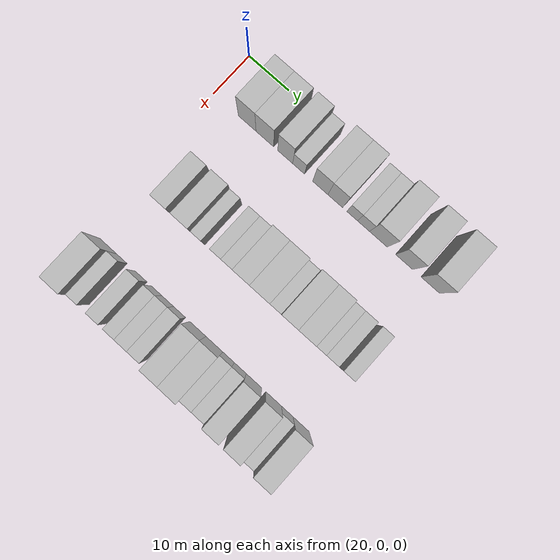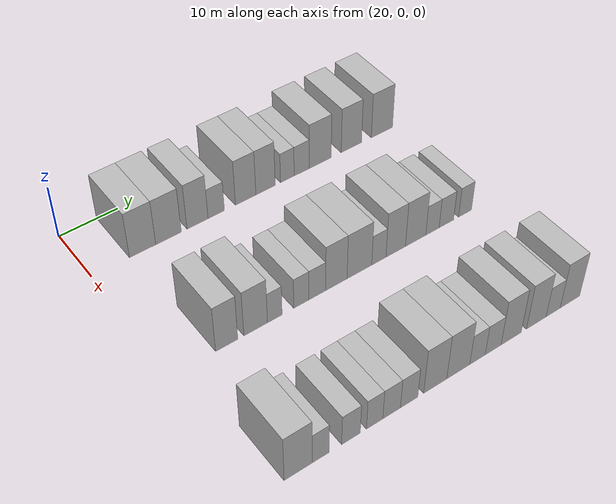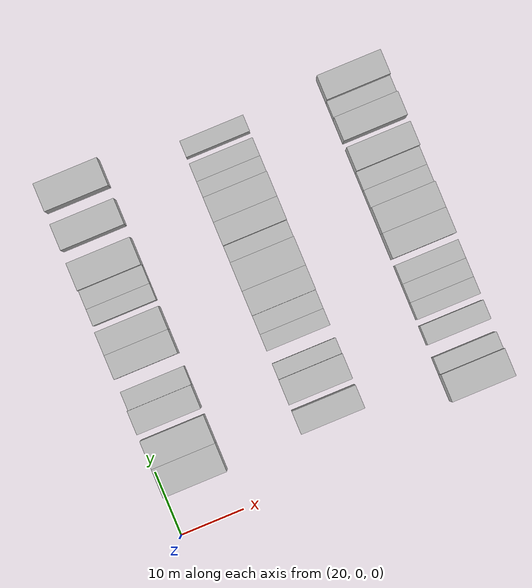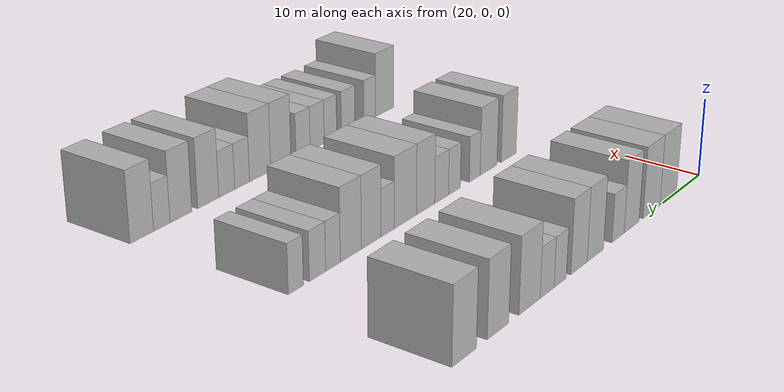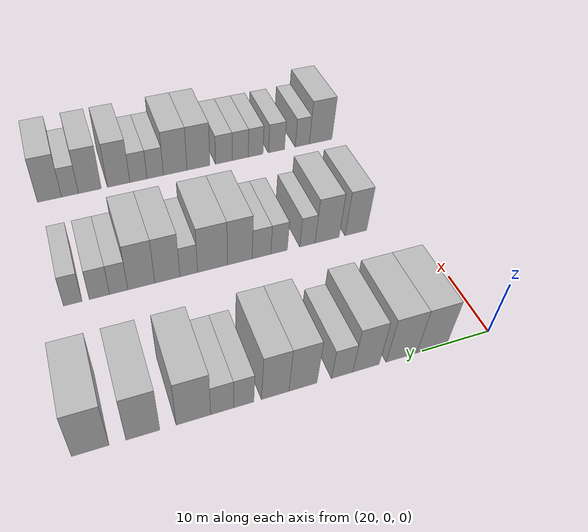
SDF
<sdf version="1.6">
 <world name="default">
  <model name="building_98">
   <static>1</static>
   <pose>25.0000 8.5556 0 0.000000 0.000000 0.000000</pose>
   <link name="link">
    <pose>0 0 4.50 0 0 0</pose>
    <collision name="collision"><geometry><box><size>10.0000 4.4544 9.0000</size></box></geometry></collision>
    <visual name="visual">
     <cast_shadows>0</cast_shadows>
     <geometry><box><size>10.0000 4.4544 9.0000</size></box></geometry>
     <material>
      <script>
       <uri>model://HANNAS_wall/materials/scripts</uri>
       <uri>model://HANNAS_wall/materials/textures</uri>
       <name>vrc/HANNAS_wall</name>
      </script>
     </material>
    </visual>
   </link>
  </model>
  <model name="building_99">
   <static>1</static>
   <pose>25.0000 12.9947 0 0.000000 0.000000 0.000000</pose>
   <link name="link">
    <pose>0 0 4.50 0 0 0</pose>
    <collision name="collision"><geometry><box><size>10.0000 4.4238 9.0000</size></box></geometry></collision>
    <visual name="visual">
     <cast_shadows>0</cast_shadows>
     <geometry><box><size>10.0000 4.4238 9.0000</size></box></geometry>
     <material>
      <script>
       <uri>model://HANNAS_wall/materials/scripts</uri>
       <uri>model://HANNAS_wall/materials/textures</uri>
       <name>vrc/HANNAS_wall</name>
      </script>
     </material>
    </visual>
   </link>
  </model>
  <model name="building_100">
   <static>1</static>
   <pose>25.0000 18.0680 0 0.000000 0.000000 0.000000</pose>
   <link name="link">
    <pose>0 0 4.50 0 0 0</pose>
    <collision name="collision"><geometry><box><size>10.0000 3.7229 9.0000</size></box></geometry></collision>
    <visual name="visual">
     <cast_shadows>0</cast_shadows>
     <geometry><box><size>10.0000 3.7229 9.0000</size></box></geometry>
     <material>
      <script>
       <uri>model://HANNAS_wall/materials/scripts</uri>
       <uri>model://HANNAS_wall/materials/textures</uri>
       <name>vrc/HANNAS_wall</name>
      </script>
     </material>
    </visual>
   </link>
  </model>
  <model name="building_101">
   <static>1</static>
   <pose>25.0000 21.3993 0 0.000000 0.000000 0.000000</pose>
   <link name="link">
    <pose>0 0 3.00 0 0 0</pose>
    <collision name="collision"><geometry><box><size>10.0000 2.9396 6.0000</size></box></geometry></collision>
    <visual name="visual">
     <cast_shadows>0</cast_shadows>
     <geometry><box><size>10.0000 2.9396 6.0000</size></box></geometry>
     <material>
      <script>
       <uri>model://HANNAS_wall/materials/scripts</uri>
       <uri>model://HANNAS_wall/materials/textures</uri>
       <name>vrc/HANNAS_wall</name>
      </script>
     </material>
    </visual>
   </link>
  </model>
  <model name="building_102">
   <static>1</static>
   <pose>25.0000 26.7552 0 0.000000 0.000000 0.000000</pose>
   <link name="link">
    <pose>0 0 4.50 0 0 0</pose>
    <collision name="collision"><geometry><box><size>10.0000 3.7722 9.0000</size></box></geometry></collision>
    <visual name="visual">
     <cast_shadows>0</cast_shadows>
     <geometry><box><size>10.0000 3.7722 9.0000</size></box></geometry>
     <material>
      <script>
       <uri>model://HANNAS_wall/materials/scripts</uri>
       <uri>model://HANNAS_wall/materials/textures</uri>
       <name>vrc/HANNAS_wall</name>
      </script>
     </material>
    </visual>
   </link>
  </model>
  <model name="building_103">
   <static>1</static>
   <pose>25.0000 30.4560 0 0.000000 0.000000 0.000000</pose>
   <link name="link">
    <pose>0 0 4.50 0 0 0</pose>
    <collision name="collision"><geometry><box><size>10.0000 3.6293 9.0000</size></box></geometry></collision>
    <visual name="visual">
     <cast_shadows>0</cast_shadows>
     <geometry><box><size>10.0000 3.6293 9.0000</size></box></geometry>
     <material>
      <script>
       <uri>model://HANNAS_wall/materials/scripts</uri>
       <uri>model://HANNAS_wall/materials/textures</uri>
       <name>vrc/HANNAS_wall</name>
      </script>
     </material>
    </visual>
   </link>
  </model>
  <model name="building_104">
   <static>1</static>
   <pose>25.0000 34.5769 0 0.000000 0.000000 0.000000</pose>
   <link name="link">
    <pose>0 0 3.00 0 0 0</pose>
    <collision name="collision"><geometry><box><size>10.0000 2.6125 6.0000</size></box></geometry></collision>
    <visual name="visual">
     <cast_shadows>0</cast_shadows>
     <geometry><box><size>10.0000 2.6125 6.0000</size></box></geometry>
     <material>
      <script>
       <uri>model://HANNAS_wall/materials/scripts</uri>
       <uri>model://HANNAS_wall/materials/textures</uri>
       <name>vrc/HANNAS_wall</name>
      </script>
     </material>
    </visual>
   </link>
  </model>
  <model name="building_105">
   <static>1</static>
   <pose>25.0000 37.3417 0 0.000000 0.000000 0.000000</pose>
   <link name="link">
    <pose>0 0 3.00 0 0 0</pose>
    <collision name="collision"><geometry><box><size>10.0000 2.9172 6.0000</size></box></geometry></collision>
    <visual name="visual">
     <cast_shadows>0</cast_shadows>
     <geometry><box><size>10.0000 2.9172 6.0000</size></box></geometry>
     <material>
      <script>
       <uri>model://HANNAS_wall/materials/scripts</uri>
       <uri>model://HANNAS_wall/materials/textures</uri>
       <name>vrc/HANNAS_wall</name>
      </script>
     </material>
    </visual>
   </link>
  </model>
  <model name="building_106">
   <static>1</static>
   <pose>25.0000 40.9530 0 0.000000 0.000000 0.000000</pose>
   <link name="link">
    <pose>0 0 4.50 0 0 0</pose>
    <collision name="collision"><geometry><box><size>10.0000 4.3053 9.0000</size></box></geometry></collision>
    <visual name="visual">
     <cast_shadows>0</cast_shadows>
     <geometry><box><size>10.0000 4.3053 9.0000</size></box></geometry>
     <material>
      <script>
       <uri>model://HANNAS_wall/materials/scripts</uri>
       <uri>model://HANNAS_wall/materials/textures</uri>
       <name>vrc/HANNAS_wall</name>
      </script>
     </material>
    </visual>
   </link>
  </model>
  <model name="building_107">
   <static>1</static>
   <pose>25.0000 47.1540 0 0.000000 0.000000 0.000000</pose>
   <link name="link">
    <pose>0 0 4.50 0 0 0</pose>
    <collision name="collision"><geometry><box><size>10.0000 4.0968 9.0000</size></box></geometry></collision>
    <visual name="visual">
     <cast_shadows>0</cast_shadows>
     <geometry><box><size>10.0000 4.0968 9.0000</size></box></geometry>
     <material>
      <script>
       <uri>model://HANNAS_wall/materials/scripts</uri>
       <uri>model://HANNAS_wall/materials/textures</uri>
       <name>vrc/HANNAS_wall</name>
      </script>
     </material>
    </visual>
   </link>
  </model>
  <model name="building_108">
   <static>1</static>
   <pose>25.0000 53.3957 0 0.000000 0.000000 0.000000</pose>
   <link name="link">
    <pose>0 0 4.50 0 0 0</pose>
    <collision name="collision"><geometry><box><size>10.0000 4.3865 9.0000</size></box></geometry></collision>
    <visual name="visual">
     <cast_shadows>0</cast_shadows>
     <geometry><box><size>10.0000 4.3865 9.0000</size></box></geometry>
     <material>
      <script>
       <uri>model://HANNAS_wall/materials/scripts</uri>
       <uri>model://HANNAS_wall/materials/textures</uri>
       <name>vrc/HANNAS_wall</name>
      </script>
     </material>
    </visual>
   </link>
  </model>
  <model name="building_294">
   <static>1</static>
   <pose>47.0000 8.9621 0 0.000000 0.000000 0.000000</pose>
   <link name="link">
    <pose>0 0 4.50 0 0 0</pose>
    <collision name="collision"><geometry><box><size>10.0000 3.6218 9.0000</size></box></geometry></collision>
    <visual name="visual">
     <cast_shadows>0</cast_shadows>
     <geometry><box><size>10.0000 3.6218 9.0000</size></box></geometry>
     <material>
      <script>
       <uri>model://HANNAS_wall/materials/scripts</uri>
       <uri>model://HANNAS_wall/materials/textures</uri>
       <name>vrc/HANNAS_wall</name>
      </script>
     </material>
    </visual>
   </link>
  </model>
  <model name="building_295">
   <static>1</static>
   <pose>47.0000 13.7423 0 0.000000 0.000000 0.000000</pose>
   <link name="link">
    <pose>0 0 4.50 0 0 0</pose>
    <collision name="collision"><geometry><box><size>10.0000 3.9386 9.0000</size></box></geometry></collision>
    <visual name="visual">
     <cast_shadows>0</cast_shadows>
     <geometry><box><size>10.0000 3.9386 9.0000</size></box></geometry>
     <material>
      <script>
       <uri>model://HANNAS_wall/materials/scripts</uri>
       <uri>model://HANNAS_wall/materials/textures</uri>
       <name>vrc/HANNAS_wall</name>
      </script>
     </material>
    </visual>
   </link>
  </model>
  <model name="building_296">
   <static>1</static>
   <pose>47.0000 16.9506 0 0.000000 0.000000 0.000000</pose>
   <link name="link">
    <pose>0 0 3.00 0 0 0</pose>
    <collision name="collision"><geometry><box><size>10.0000 2.4780 6.0000</size></box></geometry></collision>
    <visual name="visual">
     <cast_shadows>0</cast_shadows>
     <geometry><box><size>10.0000 2.4780 6.0000</size></box></geometry>
     <material>
      <script>
       <uri>model://HANNAS_wall/materials/scripts</uri>
       <uri>model://HANNAS_wall/materials/textures</uri>
       <name>vrc/HANNAS_wall</name>
      </script>
     </material>
    </visual>
   </link>
  </model>
  <model name="building_297">
   <static>1</static>
   <pose>47.0000 21.4986 0 0.000000 0.000000 0.000000</pose>
   <link name="link">
    <pose>0 0 3.00 0 0 0</pose>
    <collision name="collision"><geometry><box><size>10.0000 2.6181 6.0000</size></box></geometry></collision>
    <visual name="visual">
     <cast_shadows>0</cast_shadows>
     <geometry><box><size>10.0000 2.6181 6.0000</size></box></geometry>
     <material>
      <script>
       <uri>model://HANNAS_wall/materials/scripts</uri>
       <uri>model://HANNAS_wall/materials/textures</uri>
       <name>vrc/HANNAS_wall</name>
      </script>
     </material>
    </visual>
   </link>
  </model>
  <model name="building_298">
   <static>1</static>
   <pose>47.0000 24.2718 0 0.000000 0.000000 0.000000</pose>
   <link name="link">
    <pose>0 0 3.00 0 0 0</pose>
    <collision name="collision"><geometry><box><size>10.0000 2.9282 6.0000</size></box></geometry></collision>
    <visual name="visual">
     <cast_shadows>0</cast_shadows>
     <geometry><box><size>10.0000 2.9282 6.0000</size></box></geometry>
     <material>
      <script>
       <uri>model://HANNAS_wall/materials/scripts</uri>
       <uri>model://HANNAS_wall/materials/textures</uri>
       <name>vrc/HANNAS_wall</name>
      </script>
     </material>
    </visual>
   </link>
  </model>
  <model name="building_299">
   <static>1</static>
   <pose>47.0000 27.6601 0 0.000000 0.000000 0.000000</pose>
   <link name="link">
    <pose>0 0 4.50 0 0 0</pose>
    <collision name="collision"><geometry><box><size>10.0000 3.8485 9.0000</size></box></geometry></collision>
    <visual name="visual">
     <cast_shadows>0</cast_shadows>
     <geometry><box><size>10.0000 3.8485 9.0000</size></box></geometry>
     <material>
      <script>
       <uri>model://HANNAS_wall/materials/scripts</uri>
       <uri>model://HANNAS_wall/materials/textures</uri>
       <name>vrc/HANNAS_wall</name>
      </script>
     </material>
    </visual>
   </link>
  </model>
  <model name="building_300">
   <static>1</static>
   <pose>47.0000 31.8330 0 0.000000 0.000000 0.000000</pose>
   <link name="link">
    <pose>0 0 4.50 0 0 0</pose>
    <collision name="collision"><geometry><box><size>10.0000 4.4974 9.0000</size></box></geometry></collision>
    <visual name="visual">
     <cast_shadows>0</cast_shadows>
     <geometry><box><size>10.0000 4.4974 9.0000</size></box></geometry>
     <material>
      <script>
       <uri>model://HANNAS_wall/materials/scripts</uri>
       <uri>model://HANNAS_wall/materials/textures</uri>
       <name>vrc/HANNAS_wall</name>
      </script>
     </material>
    </visual>
   </link>
  </model>
  <model name="building_301">
   <static>1</static>
   <pose>47.0000 35.4019 0 0.000000 0.000000 0.000000</pose>
   <link name="link">
    <pose>0 0 3.00 0 0 0</pose>
    <collision name="collision"><geometry><box><size>10.0000 2.6404 6.0000</size></box></geometry></collision>
    <visual name="visual">
     <cast_shadows>0</cast_shadows>
     <geometry><box><size>10.0000 2.6404 6.0000</size></box></geometry>
     <material>
      <script>
       <uri>model://HANNAS_wall/materials/scripts</uri>
       <uri>model://HANNAS_wall/materials/textures</uri>
       <name>vrc/HANNAS_wall</name>
      </script>
     </material>
    </visual>
   </link>
  </model>
  <model name="building_302">
   <static>1</static>
   <pose>47.0000 38.5589 0 0.000000 0.000000 0.000000</pose>
   <link name="link">
    <pose>0 0 4.50 0 0 0</pose>
    <collision name="collision"><geometry><box><size>10.0000 3.6736 9.0000</size></box></geometry></collision>
    <visual name="visual">
     <cast_shadows>0</cast_shadows>
     <geometry><box><size>10.0000 3.6736 9.0000</size></box></geometry>
     <material>
      <script>
       <uri>model://HANNAS_wall/materials/scripts</uri>
       <uri>model://HANNAS_wall/materials/textures</uri>
       <name>vrc/HANNAS_wall</name>
      </script>
     </material>
    </visual>
   </link>
  </model>
  <model name="building_303">
   <static>1</static>
   <pose>47.0000 42.3460 0 0.000000 0.000000 0.000000</pose>
   <link name="link">
    <pose>0 0 4.50 0 0 0</pose>
    <collision name="collision"><geometry><box><size>10.0000 3.9005 9.0000</size></box></geometry></collision>
    <visual name="visual">
     <cast_shadows>0</cast_shadows>
     <geometry><box><size>10.0000 3.9005 9.0000</size></box></geometry>
     <material>
      <script>
       <uri>model://HANNAS_wall/materials/scripts</uri>
       <uri>model://HANNAS_wall/materials/textures</uri>
       <name>vrc/HANNAS_wall</name>
      </script>
     </material>
    </visual>
   </link>
  </model>
  <model name="building_304">
   <static>1</static>
   <pose>47.0000 45.6006 0 0.000000 0.000000 0.000000</pose>
   <link name="link">
    <pose>0 0 3.00 0 0 0</pose>
    <collision name="collision"><geometry><box><size>10.0000 2.6086 6.0000</size></box></geometry></collision>
    <visual name="visual">
     <cast_shadows>0</cast_shadows>
     <geometry><box><size>10.0000 2.6086 6.0000</size></box></geometry>
     <material>
      <script>
       <uri>model://HANNAS_wall/materials/scripts</uri>
       <uri>model://HANNAS_wall/materials/textures</uri>
       <name>vrc/HANNAS_wall</name>
      </script>
     </material>
    </visual>
   </link>
  </model>
  <model name="building_305">
   <static>1</static>
   <pose>47.0000 48.3323 0 0.000000 0.000000 0.000000</pose>
   <link name="link">
    <pose>0 0 3.00 0 0 0</pose>
    <collision name="collision"><geometry><box><size>10.0000 2.8547 6.0000</size></box></geometry></collision>
    <visual name="visual">
     <cast_shadows>0</cast_shadows>
     <geometry><box><size>10.0000 2.8547 6.0000</size></box></geometry>
     <material>
      <script>
       <uri>model://HANNAS_wall/materials/scripts</uri>
       <uri>model://HANNAS_wall/materials/textures</uri>
       <name>vrc/HANNAS_wall</name>
      </script>
     </material>
    </visual>
   </link>
  </model>
  <model name="building_306">
   <static>1</static>
   <pose>47.0000 52.0493 0 0.000000 0.000000 0.000000</pose>
   <link name="link">
    <pose>0 0 3.00 0 0 0</pose>
    <collision name="collision"><geometry><box><size>10.0000 2.5794 6.0000</size></box></geometry></collision>
    <visual name="visual">
     <cast_shadows>0</cast_shadows>
     <geometry><box><size>10.0000 2.5794 6.0000</size></box></geometry>
     <material>
      <script>
       <uri>model://HANNAS_wall/materials/scripts</uri>
       <uri>model://HANNAS_wall/materials/textures</uri>
       <name>vrc/HANNAS_wall</name>
      </script>
     </material>
    </visual>
   </link>
  </model>
  <model name="building_474">
   <static>1</static>
   <pose>69.0000 5.2394 0 0.000000 0.000000 0.000000</pose>
   <link name="link">
    <pose>0 0 4.50 0 0 0</pose>
    <collision name="collision"><geometry><box><size>10.0000 4.3022 9.0000</size></box></geometry></collision>
    <visual name="visual">
     <cast_shadows>0</cast_shadows>
     <geometry><box><size>10.0000 4.3022 9.0000</size></box></geometry>
     <material>
      <script>
       <uri>model://HANNAS_wall/materials/scripts</uri>
       <uri>model://HANNAS_wall/materials/textures</uri>
       <name>vrc/HANNAS_wall</name>
      </script>
     </material>
    </visual>
   </link>
  </model>
  <model name="building_475">
   <static>1</static>
   <pose>69.0000 8.7131 0 0.000000 0.000000 0.000000</pose>
   <link name="link">
    <pose>0 0 3.00 0 0 0</pose>
    <collision name="collision"><geometry><box><size>10.0000 2.6453 6.0000</size></box></geometry></collision>
    <visual name="visual">
     <cast_shadows>0</cast_shadows>
     <geometry><box><size>10.0000 2.6453 6.0000</size></box></geometry>
     <material>
      <script>
       <uri>model://HANNAS_wall/materials/scripts</uri>
       <uri>model://HANNAS_wall/materials/textures</uri>
       <name>vrc/HANNAS_wall</name>
      </script>
     </material>
    </visual>
   </link>
  </model>
  <model name="building_476">
   <static>1</static>
   <pose>69.0000 13.5274 0 0.000000 0.000000 0.000000</pose>
   <link name="link">
    <pose>0 0 3.00 0 0 0</pose>
    <collision name="collision"><geometry><box><size>10.0000 2.9832 6.0000</size></box></geometry></collision>
    <visual name="visual">
     <cast_shadows>0</cast_shadows>
     <geometry><box><size>10.0000 2.9832 6.0000</size></box></geometry>
     <material>
      <script>
       <uri>model://HANNAS_wall/materials/scripts</uri>
       <uri>model://HANNAS_wall/materials/textures</uri>
       <name>vrc/HANNAS_wall</name>
      </script>
     </material>
    </visual>
   </link>
  </model>
  <model name="building_477">
   <static>1</static>
   <pose>69.0000 17.3593 0 0.000000 0.000000 0.000000</pose>
   <link name="link">
    <pose>0 0 3.00 0 0 0</pose>
    <collision name="collision"><geometry><box><size>10.0000 2.6807 6.0000</size></box></geometry></collision>
    <visual name="visual">
     <cast_shadows>0</cast_shadows>
     <geometry><box><size>10.0000 2.6807 6.0000</size></box></geometry>
     <material>
      <script>
       <uri>model://HANNAS_wall/materials/scripts</uri>
       <uri>model://HANNAS_wall/materials/textures</uri>
       <name>vrc/HANNAS_wall</name>
      </script>
     </material>
    </visual>
   </link>
  </model>
  <model name="building_478">
   <static>1</static>
   <pose>69.0000 20.1623 0 0.000000 0.000000 0.000000</pose>
   <link name="link">
    <pose>0 0 3.00 0 0 0</pose>
    <collision name="collision"><geometry><box><size>10.0000 2.9253 6.0000</size></box></geometry></collision>
    <visual name="visual">
     <cast_shadows>0</cast_shadows>
     <geometry><box><size>10.0000 2.9253 6.0000</size></box></geometry>
     <material>
      <script>
       <uri>model://HANNAS_wall/materials/scripts</uri>
       <uri>model://HANNAS_wall/materials/textures</uri>
       <name>vrc/HANNAS_wall</name>
      </script>
     </material>
    </visual>
   </link>
  </model>
  <model name="building_479">
   <static>1</static>
   <pose>69.0000 23.0969 0 0.000000 0.000000 0.000000</pose>
   <link name="link">
    <pose>0 0 3.00 0 0 0</pose>
    <collision name="collision"><geometry><box><size>10.0000 2.9439 6.0000</size></box></geometry></collision>
    <visual name="visual">
     <cast_shadows>0</cast_shadows>
     <geometry><box><size>10.0000 2.9439 6.0000</size></box></geometry>
     <material>
      <script>
       <uri>model://HANNAS_wall/materials/scripts</uri>
       <uri>model://HANNAS_wall/materials/textures</uri>
       <name>vrc/HANNAS_wall</name>
      </script>
     </material>
    </visual>
   </link>
  </model>
  <model name="building_480">
   <static>1</static>
   <pose>69.0000 27.5644 0 0.000000 0.000000 0.000000</pose>
   <link name="link">
    <pose>0 0 4.50 0 0 0</pose>
    <collision name="collision"><geometry><box><size>10.0000 3.9912 9.0000</size></box></geometry></collision>
    <visual name="visual">
     <cast_shadows>0</cast_shadows>
     <geometry><box><size>10.0000 3.9912 9.0000</size></box></geometry>
     <material>
      <script>
       <uri>model://HANNAS_wall/materials/scripts</uri>
       <uri>model://HANNAS_wall/materials/textures</uri>
       <name>vrc/HANNAS_wall</name>
      </script>
     </material>
    </visual>
   </link>
  </model>
  <model name="building_481">
   <static>1</static>
   <pose>69.0000 31.5953 0 0.000000 0.000000 0.000000</pose>
   <link name="link">
    <pose>0 0 4.50 0 0 0</pose>
    <collision name="collision"><geometry><box><size>10.0000 4.0706 9.0000</size></box></geometry></collision>
    <visual name="visual">
     <cast_shadows>0</cast_shadows>
     <geometry><box><size>10.0000 4.0706 9.0000</size></box></geometry>
     <material>
      <script>
       <uri>model://HANNAS_wall/materials/scripts</uri>
       <uri>model://HANNAS_wall/materials/textures</uri>
       <name>vrc/HANNAS_wall</name>
      </script>
     </material>
    </visual>
   </link>
  </model>
  <model name="building_482">
   <static>1</static>
   <pose>69.0000 35.0216 0 0.000000 0.000000 0.000000</pose>
   <link name="link">
    <pose>0 0 3.00 0 0 0</pose>
    <collision name="collision"><geometry><box><size>10.0000 2.7820 6.0000</size></box></geometry></collision>
    <visual name="visual">
     <cast_shadows>0</cast_shadows>
     <geometry><box><size>10.0000 2.7820 6.0000</size></box></geometry>
     <material>
      <script>
       <uri>model://HANNAS_wall/materials/scripts</uri>
       <uri>model://HANNAS_wall/materials/textures</uri>
       <name>vrc/HANNAS_wall</name>
      </script>
     </material>
    </visual>
   </link>
  </model>
  <model name="building_483">
   <static>1</static>
   <pose>69.0000 37.8592 0 0.000000 0.000000 0.000000</pose>
   <link name="link">
    <pose>0 0 3.00 0 0 0</pose>
    <collision name="collision"><geometry><box><size>10.0000 2.8930 6.0000</size></box></geometry></collision>
    <visual name="visual">
     <cast_shadows>0</cast_shadows>
     <geometry><box><size>10.0000 2.8930 6.0000</size></box></geometry>
     <material>
      <script>
       <uri>model://HANNAS_wall/materials/scripts</uri>
       <uri>model://HANNAS_wall/materials/textures</uri>
       <name>vrc/HANNAS_wall</name>
      </script>
     </material>
    </visual>
   </link>
  </model>
  <model name="building_484">
   <static>1</static>
   <pose>69.0000 41.1710 0 0.000000 0.000000 0.000000</pose>
   <link name="link">
    <pose>0 0 4.50 0 0 0</pose>
    <collision name="collision"><geometry><box><size>10.0000 3.7308 9.0000</size></box></geometry></collision>
    <visual name="visual">
     <cast_shadows>0</cast_shadows>
     <geometry><box><size>10.0000 3.7308 9.0000</size></box></geometry>
     <material>
      <script>
       <uri>model://HANNAS_wall/materials/scripts</uri>
       <uri>model://HANNAS_wall/materials/textures</uri>
       <name>vrc/HANNAS_wall</name>
      </script>
     </material>
    </visual>
   </link>
  </model>
  <model name="building_485">
   <static>1</static>
   <pose>69.0000 45.8991 0 0.000000 0.000000 0.000000</pose>
   <link name="link">
    <pose>0 0 4.50 0 0 0</pose>
    <collision name="collision"><geometry><box><size>10.0000 3.7254 9.0000</size></box></geometry></collision>
    <visual name="visual">
     <cast_shadows>0</cast_shadows>
     <geometry><box><size>10.0000 3.7254 9.0000</size></box></geometry>
     <material>
      <script>
       <uri>model://HANNAS_wall/materials/scripts</uri>
       <uri>model://HANNAS_wall/materials/textures</uri>
       <name>vrc/HANNAS_wall</name>
      </script>
     </material>
    </visual>
   </link>
  </model>
  <model name="building_486">
   <static>1</static>
   <pose>69.0000 49.1210 0 0.000000 0.000000 0.000000</pose>
   <link name="link">
    <pose>0 0 3.00 0 0 0</pose>
    <collision name="collision"><geometry><box><size>10.0000 2.7184 6.0000</size></box></geometry></collision>
    <visual name="visual">
     <cast_shadows>0</cast_shadows>
     <geometry><box><size>10.0000 2.7184 6.0000</size></box></geometry>
     <material>
      <script>
       <uri>model://HANNAS_wall/materials/scripts</uri>
       <uri>model://HANNAS_wall/materials/textures</uri>
       <name>vrc/HANNAS_wall</name>
      </script>
     </material>
    </visual>
   </link>
  </model>
  <model name="building_487">
   <static>1</static>
   <pose>69.0000 52.3933 0 0.000000 0.000000 0.000000</pose>
   <link name="link">
    <pose>0 0 4.50 0 0 0</pose>
    <collision name="collision"><geometry><box><size>10.0000 3.8261 9.0000</size></box></geometry></collision>
    <visual name="visual">
     <cast_shadows>0</cast_shadows>
     <geometry><box><size>10.0000 3.8261 9.0000</size></box></geometry>
     <material>
      <script>
       <uri>model://HANNAS_wall/materials/scripts</uri>
       <uri>model://HANNAS_wall/materials/textures</uri>
       <name>vrc/HANNAS_wall</name>
      </script>
     </material>
    </visual>
   </link>
  </model>
 </world>
</sdf>
